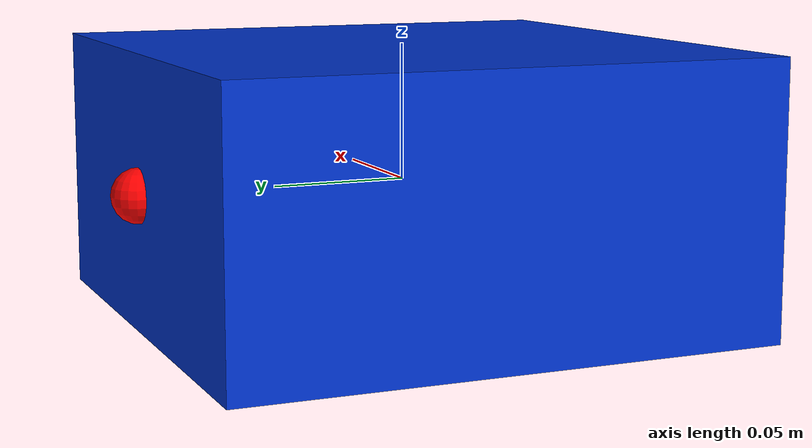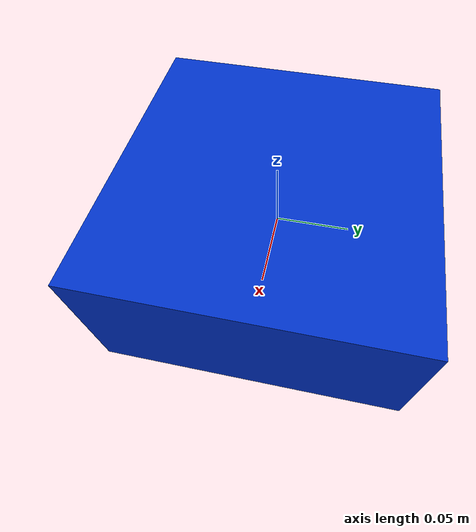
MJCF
<mujoco model="blue_box">
  <worldbody>
    <body name="blue_box" pos="0 0 0">
      <freejoint name="box_joint"/>
      <geom name="box_geom" type="box" size="0.1 0.1 0.05" rgba="0 0.2 0.8 1" mass="1.0" friction="1 0.005 0.0001"/>
      <site name="grip_left" pos="0 -0.1 0" size="0.01" rgba="1 0 0 1"/>
      <site name="grip_right" pos="0 0.1 0" size="0.01" rgba="1 0 0 1"/>
    </body>
  </worldbody>
</mujoco>
